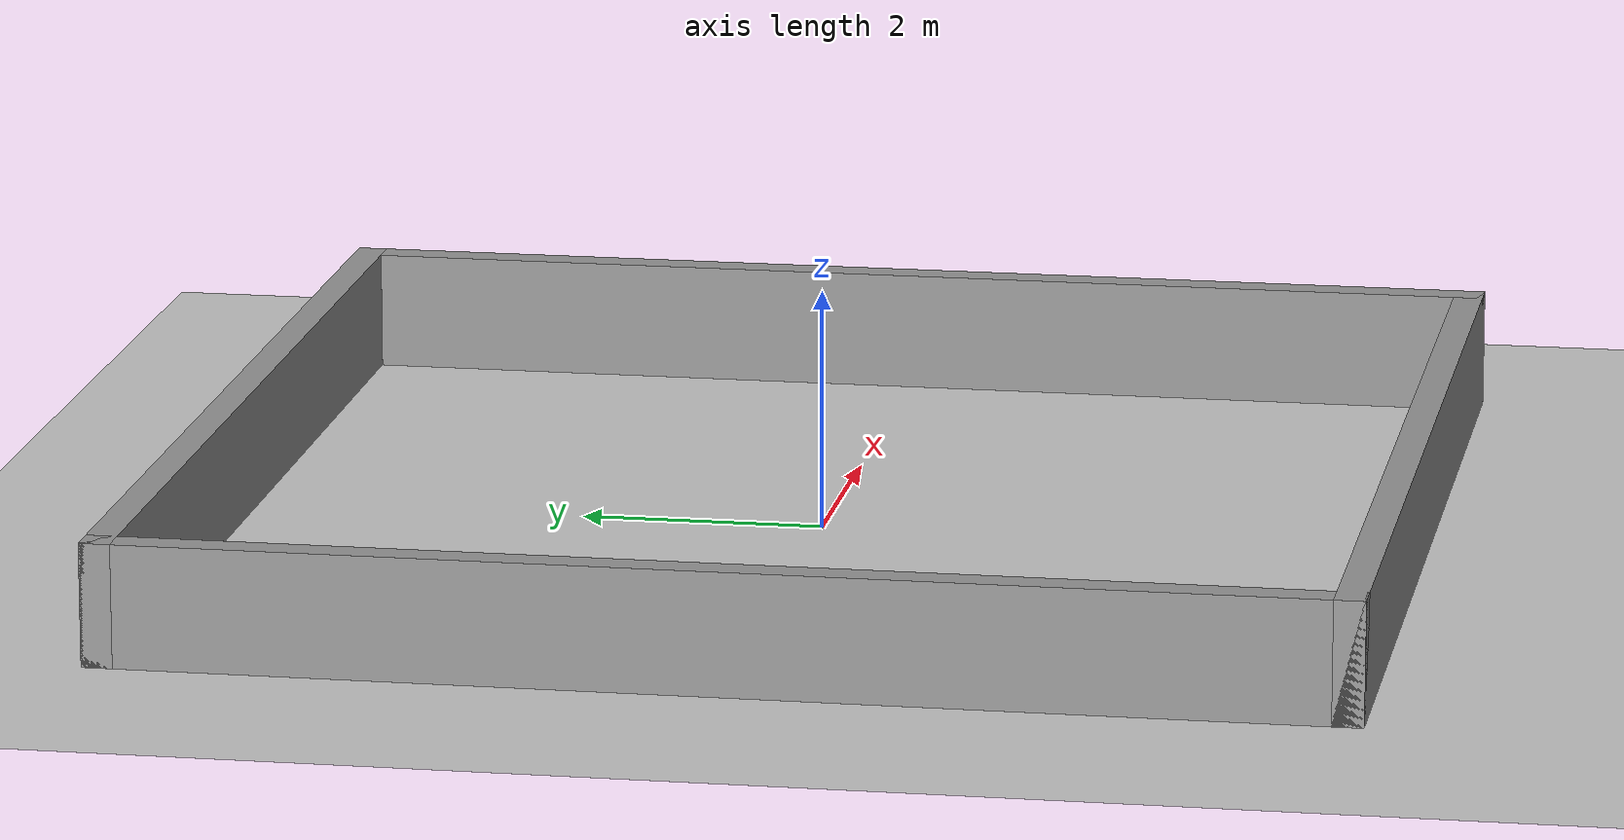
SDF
<?xml version="1.0" ?>
<sdf version="1.6">
  <world name="sim_empty_world">
    <include>
      <uri>model://ground_plane</uri>
    </include>
    <include>
      <uri>model://sun</uri>
    </include>
    <gravity>0 0 -9.8</gravity>
    <physics type="ode">
      <real_time_update_rate>100</real_time_update_rate>
      <max_step_size>0.01</max_step_size>
      <real_time_factor>1</real_time_factor>
      <ode>
        <solver>
          <type>quick</type>
          <iters>20</iters>
          <precon_iters>0</precon_iters>
          <sor>1.400000</sor>
          <use_dynamic_moi_rescaling>1</use_dynamic_moi_rescaling>
        </solver>
        <constraints>
          <cfm>0.00001</cfm>
          <erp>0.2</erp>
          <contact_max_correcting_vel>2000.0</contact_max_correcting_vel>
          <contact_surface_layer>0.01</contact_surface_layer>
        </constraints>
      </ode>
    </physics>
    <scene>
      <ambient>0.4 0.4 0.4 1</ambient>
      <background>0.7 0.7 0.7 1</background>
      <shadows>true</shadows>
    </scene>

    <!-- 外围高墙 -->
    <model name="wall_outer_left"><static>true</static><link name="link">
      <collision name="c"><geometry><box><size>0.25 10.0 1.0</size></box></geometry></collision>
      <visual name="v"><geometry><box><size>0.25 10.0 1.0</size></box></geometry>
        <material><script><name>Gazebo/Gray</name></script></material></visual>
      <pose>-4.875 0.0 0.5 0 0 0</pose></link></model>

    <model name="wall_outer_right"><static>true</static><link name="link">
      <collision name="c"><geometry><box><size>0.25 10.0 1.0</size></box></geometry></collision>
      <visual name="v"><geometry><box><size>0.25 10.0 1.0</size></box></geometry>
        <material><script><name>Gazebo/Gray</name></script></material></visual>
      <pose>4.875 0.0 0.5 0 0 0</pose></link></model>

    <model name="wall_outer_top"><static>true</static><link name="link">
      <collision name="c"><geometry><box><size>10.0 0.25 1.0</size></box></geometry></collision>
      <visual name="v"><geometry><box><size>10.0 0.25 1.0</size></box></geometry>
        <material><script><name>Gazebo/Gray</name></script></material></visual>
      <pose>0.0 4.875 0.5 0 0 0</pose></link></model>

    <model name="wall_outer_bottom"><static>true</static><link name="link">
      <collision name="c"><geometry><box><size>10.0 0.25 1.0</size></box></geometry></collision>
      <visual name="v"><geometry><box><size>10.0 0.25 1.0</size></box></geometry>
        <material><script><name>Gazebo/Gray</name></script></material></visual>
      <pose>0.0 -4.875 0.5 0 0 0</pose></link></model>

  </world>
</sdf>
